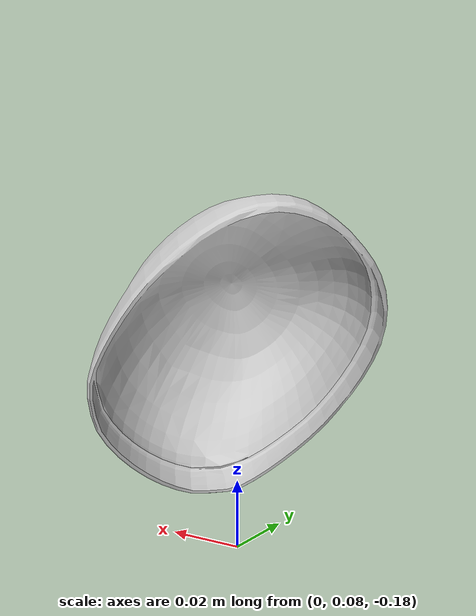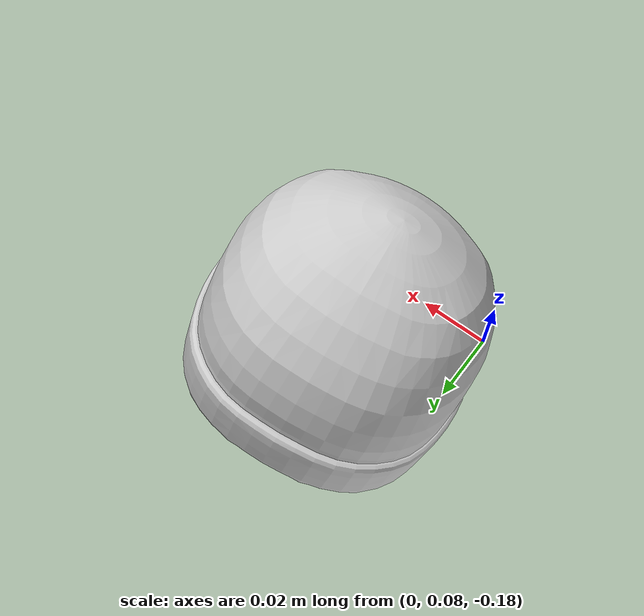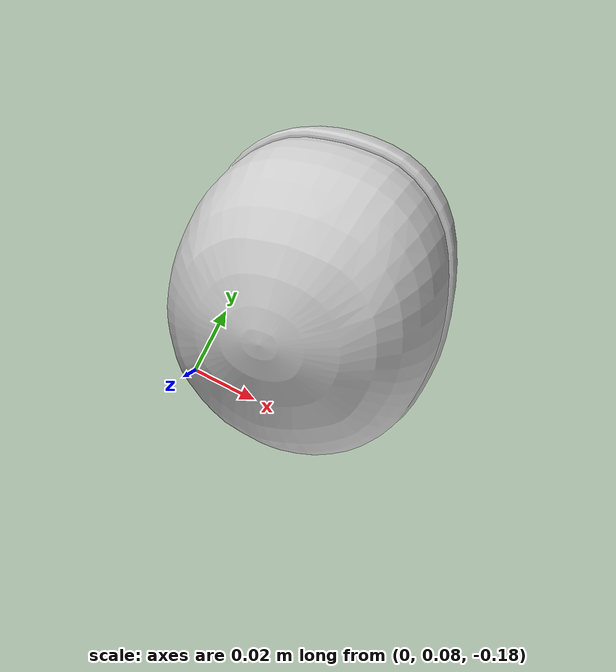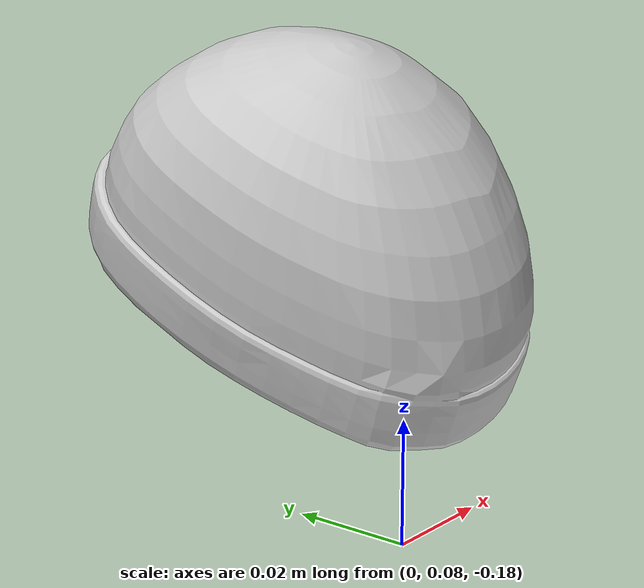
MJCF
<mujoco model="Towel">
  <asset>
  <texture file="visual/ceramic.png" name="tex-Towel" type="2d" />
  <material name="Towel" reflectance="0.5" texrepeat="1 1" texture="tex-Towel" texuniform="false" />
  <mesh file="visual/model_normalized_0.obj" name="model_normalized_0_vis" scale="1.0 1.0 1.0" /><mesh file="collision/model_normalized_collision_22.obj" name="model_normalized_collision_22._coll" scale="1.0 1.0 1.0" /><mesh file="collision/model_normalized_collision_4.obj" name="model_normalized_collision_4._coll" scale="1.0 1.0 1.0" /><mesh file="collision/model_normalized_collision_27.obj" name="model_normalized_collision_27._coll" scale="1.0 1.0 1.0" /><mesh file="collision/model_normalized_collision_6.obj" name="model_normalized_collision_6._coll" scale="1.0 1.0 1.0" /><mesh file="collision/model_normalized_collision_25.obj" name="model_normalized_collision_25._coll" scale="1.0 1.0 1.0" /><mesh file="collision/model_normalized_collision_26.obj" name="model_normalized_collision_26._coll" scale="1.0 1.0 1.0" /><mesh file="collision/model_normalized_collision_29.obj" name="model_normalized_collision_29._coll" scale="1.0 1.0 1.0" /><mesh file="collision/model_normalized_collision_19.obj" name="model_normalized_collision_19._coll" scale="1.0 1.0 1.0" /><mesh file="collision/model_normalized_collision_12.obj" name="model_normalized_collision_12._coll" scale="1.0 1.0 1.0" /><mesh file="collision/model_normalized_collision_17.obj" name="model_normalized_collision_17._coll" scale="1.0 1.0 1.0" /><mesh file="collision/model_normalized_collision_20.obj" name="model_normalized_collision_20._coll" scale="1.0 1.0 1.0" /><mesh file="collision/model_normalized_collision_14.obj" name="model_normalized_collision_14._coll" scale="1.0 1.0 1.0" /><mesh file="collision/model_normalized_collision_18.obj" name="model_normalized_collision_18._coll" scale="1.0 1.0 1.0" /><mesh file="collision/model_normalized_collision_15.obj" name="model_normalized_collision_15._coll" scale="1.0 1.0 1.0" /><mesh file="collision/model_normalized_collision_30.obj" name="model_normalized_collision_30._coll" scale="1.0 1.0 1.0" /><mesh file="collision/model_normalized_collision_31.obj" name="model_normalized_collision_31._coll" scale="1.0 1.0 1.0" /><mesh file="collision/model_normalized_collision_23.obj" name="model_normalized_collision_23._coll" scale="1.0 1.0 1.0" /><mesh file="collision/model_normalized_collision_28.obj" name="model_normalized_collision_28._coll" scale="1.0 1.0 1.0" /><mesh file="collision/model_normalized_collision_13.obj" name="model_normalized_collision_13._coll" scale="1.0 1.0 1.0" /><mesh file="collision/model_normalized_collision_5.obj" name="model_normalized_collision_5._coll" scale="1.0 1.0 1.0" /><mesh file="collision/model_normalized_collision_24.obj" name="model_normalized_collision_24._coll" scale="1.0 1.0 1.0" /><mesh file="collision/model_normalized_collision_16.obj" name="model_normalized_collision_16._coll" scale="1.0 1.0 1.0" /><mesh file="collision/model_normalized_collision_11.obj" name="model_normalized_collision_11._coll" scale="1.0 1.0 1.0" /><mesh file="collision/model_normalized_collision_1.obj" name="model_normalized_collision_1._coll" scale="1.0 1.0 1.0" /><mesh file="collision/model_normalized_collision_10.obj" name="model_normalized_collision_10._coll" scale="1.0 1.0 1.0" /><mesh file="collision/model_normalized_collision_21.obj" name="model_normalized_collision_21._coll" scale="1.0 1.0 1.0" /><mesh file="collision/model_normalized_collision_8.obj" name="model_normalized_collision_8._coll" scale="1.0 1.0 1.0" /><mesh file="collision/model_normalized_collision_7.obj" name="model_normalized_collision_7._coll" scale="1.0 1.0 1.0" /><mesh file="collision/model_normalized_collision_3.obj" name="model_normalized_collision_3._coll" scale="1.0 1.0 1.0" /><mesh file="collision/model_normalized_collision_2.obj" name="model_normalized_collision_2._coll" scale="1.0 1.0 1.0" /><mesh file="collision/model_normalized_collision_9.obj" name="model_normalized_collision_9._coll" scale="1.0 1.0 1.0" /><mesh file="collision/model_normalized_collision_0.obj" name="model_normalized_collision_0._coll" scale="1.0 1.0 1.0" /><material name="material_0" specular="0.4000000000000001" shininess="0.001" rgba="0.80000000 0.80000000 0.80000000 1.0" /></asset>
  <worldbody>
    <body>
      <body name="object">
      <geom solimp="0.998 0.998 0.001" solref="0.001 1" density="100" friction="0.95 0.3 0.1" type="mesh" mesh="model_normalized_0_vis" conaffinity="0" contype="0" group="1" material="material_0" /><geom solimp="0.998 0.998 0.001" solref="0.001 1" density="100" friction="0.95 0.3 0.1" type="mesh" mesh="model_normalized_collision_22._coll" group="0" rgba="0.8 0.8 0.8 0.0" /><geom solimp="0.998 0.998 0.001" solref="0.001 1" density="100" friction="0.95 0.3 0.1" type="mesh" mesh="model_normalized_collision_4._coll" group="0" rgba="0.8 0.8 0.8 0.0" /><geom solimp="0.998 0.998 0.001" solref="0.001 1" density="100" friction="0.95 0.3 0.1" type="mesh" mesh="model_normalized_collision_27._coll" group="0" rgba="0.8 0.8 0.8 0.0" /><geom solimp="0.998 0.998 0.001" solref="0.001 1" density="100" friction="0.95 0.3 0.1" type="mesh" mesh="model_normalized_collision_6._coll" group="0" rgba="0.8 0.8 0.8 0.0" /><geom solimp="0.998 0.998 0.001" solref="0.001 1" density="100" friction="0.95 0.3 0.1" type="mesh" mesh="model_normalized_collision_25._coll" group="0" rgba="0.8 0.8 0.8 0.0" /><geom solimp="0.998 0.998 0.001" solref="0.001 1" density="100" friction="0.95 0.3 0.1" type="mesh" mesh="model_normalized_collision_26._coll" group="0" rgba="0.8 0.8 0.8 0.0" /><geom solimp="0.998 0.998 0.001" solref="0.001 1" density="100" friction="0.95 0.3 0.1" type="mesh" mesh="model_normalized_collision_29._coll" group="0" rgba="0.8 0.8 0.8 0.0" /><geom solimp="0.998 0.998 0.001" solref="0.001 1" density="100" friction="0.95 0.3 0.1" type="mesh" mesh="model_normalized_collision_19._coll" group="0" rgba="0.8 0.8 0.8 0.0" /><geom solimp="0.998 0.998 0.001" solref="0.001 1" density="100" friction="0.95 0.3 0.1" type="mesh" mesh="model_normalized_collision_12._coll" group="0" rgba="0.8 0.8 0.8 0.0" /><geom solimp="0.998 0.998 0.001" solref="0.001 1" density="100" friction="0.95 0.3 0.1" type="mesh" mesh="model_normalized_collision_17._coll" group="0" rgba="0.8 0.8 0.8 0.0" /><geom solimp="0.998 0.998 0.001" solref="0.001 1" density="100" friction="0.95 0.3 0.1" type="mesh" mesh="model_normalized_collision_20._coll" group="0" rgba="0.8 0.8 0.8 0.0" /><geom solimp="0.998 0.998 0.001" solref="0.001 1" density="100" friction="0.95 0.3 0.1" type="mesh" mesh="model_normalized_collision_14._coll" group="0" rgba="0.8 0.8 0.8 0.0" /><geom solimp="0.998 0.998 0.001" solref="0.001 1" density="100" friction="0.95 0.3 0.1" type="mesh" mesh="model_normalized_collision_18._coll" group="0" rgba="0.8 0.8 0.8 0.0" /><geom solimp="0.998 0.998 0.001" solref="0.001 1" density="100" friction="0.95 0.3 0.1" type="mesh" mesh="model_normalized_collision_15._coll" group="0" rgba="0.8 0.8 0.8 0.0" /><geom solimp="0.998 0.998 0.001" solref="0.001 1" density="100" friction="0.95 0.3 0.1" type="mesh" mesh="model_normalized_collision_30._coll" group="0" rgba="0.8 0.8 0.8 0.0" /><geom solimp="0.998 0.998 0.001" solref="0.001 1" density="100" friction="0.95 0.3 0.1" type="mesh" mesh="model_normalized_collision_31._coll" group="0" rgba="0.8 0.8 0.8 0.0" /><geom solimp="0.998 0.998 0.001" solref="0.001 1" density="100" friction="0.95 0.3 0.1" type="mesh" mesh="model_normalized_collision_23._coll" group="0" rgba="0.8 0.8 0.8 0.0" /><geom solimp="0.998 0.998 0.001" solref="0.001 1" density="100" friction="0.95 0.3 0.1" type="mesh" mesh="model_normalized_collision_28._coll" group="0" rgba="0.8 0.8 0.8 0.0" /><geom solimp="0.998 0.998 0.001" solref="0.001 1" density="100" friction="0.95 0.3 0.1" type="mesh" mesh="model_normalized_collision_13._coll" group="0" rgba="0.8 0.8 0.8 0.0" /><geom solimp="0.998 0.998 0.001" solref="0.001 1" density="100" friction="0.95 0.3 0.1" type="mesh" mesh="model_normalized_collision_5._coll" group="0" rgba="0.8 0.8 0.8 0.0" /><geom solimp="0.998 0.998 0.001" solref="0.001 1" density="100" friction="0.95 0.3 0.1" type="mesh" mesh="model_normalized_collision_24._coll" group="0" rgba="0.8 0.8 0.8 0.0" /><geom solimp="0.998 0.998 0.001" solref="0.001 1" density="100" friction="0.95 0.3 0.1" type="mesh" mesh="model_normalized_collision_16._coll" group="0" rgba="0.8 0.8 0.8 0.0" /><geom solimp="0.998 0.998 0.001" solref="0.001 1" density="100" friction="0.95 0.3 0.1" type="mesh" mesh="model_normalized_collision_11._coll" group="0" rgba="0.8 0.8 0.8 0.0" /><geom solimp="0.998 0.998 0.001" solref="0.001 1" density="100" friction="0.95 0.3 0.1" type="mesh" mesh="model_normalized_collision_1._coll" group="0" rgba="0.8 0.8 0.8 0.0" /><geom solimp="0.998 0.998 0.001" solref="0.001 1" density="100" friction="0.95 0.3 0.1" type="mesh" mesh="model_normalized_collision_10._coll" group="0" rgba="0.8 0.8 0.8 0.0" /><geom solimp="0.998 0.998 0.001" solref="0.001 1" density="100" friction="0.95 0.3 0.1" type="mesh" mesh="model_normalized_collision_21._coll" group="0" rgba="0.8 0.8 0.8 0.0" /><geom solimp="0.998 0.998 0.001" solref="0.001 1" density="100" friction="0.95 0.3 0.1" type="mesh" mesh="model_normalized_collision_8._coll" group="0" rgba="0.8 0.8 0.8 0.0" /><geom solimp="0.998 0.998 0.001" solref="0.001 1" density="100" friction="0.95 0.3 0.1" type="mesh" mesh="model_normalized_collision_7._coll" group="0" rgba="0.8 0.8 0.8 0.0" /><geom solimp="0.998 0.998 0.001" solref="0.001 1" density="100" friction="0.95 0.3 0.1" type="mesh" mesh="model_normalized_collision_3._coll" group="0" rgba="0.8 0.8 0.8 0.0" /><geom solimp="0.998 0.998 0.001" solref="0.001 1" density="100" friction="0.95 0.3 0.1" type="mesh" mesh="model_normalized_collision_2._coll" group="0" rgba="0.8 0.8 0.8 0.0" /><geom solimp="0.998 0.998 0.001" solref="0.001 1" density="100" friction="0.95 0.3 0.1" type="mesh" mesh="model_normalized_collision_9._coll" group="0" rgba="0.8 0.8 0.8 0.0" /><geom solimp="0.998 0.998 0.001" solref="0.001 1" density="100" friction="0.95 0.3 0.1" type="mesh" mesh="model_normalized_collision_0._coll" group="0" rgba="0.8 0.8 0.8 0.0" /></body>
      <site rgba="0 0 0 0" size="0.005" pos="0.0 0.0 -0.027874716232011834" name="bottom_site" />
      <site rgba="0 0 0 0" size="0.005" pos="0.0 0.0 0.032731344404761206" name="top_site" />
      <site rgba="0 0 0 0" size="0.005" pos="0.5075757576317627 0.5075757576317627 0.0024283140863746843" name="horizontal_radius_site" />
    </body>
  </worldbody>
</mujoco>
